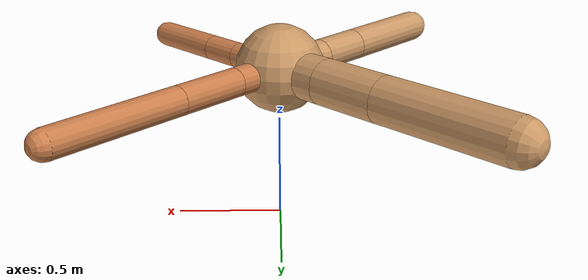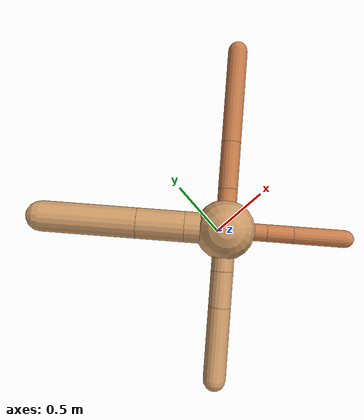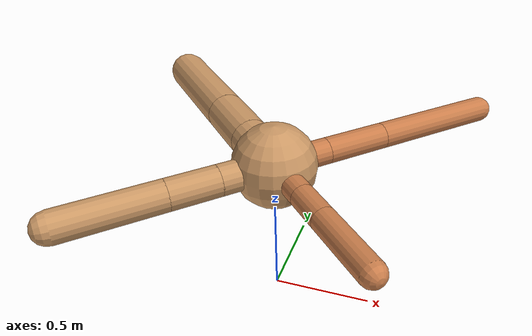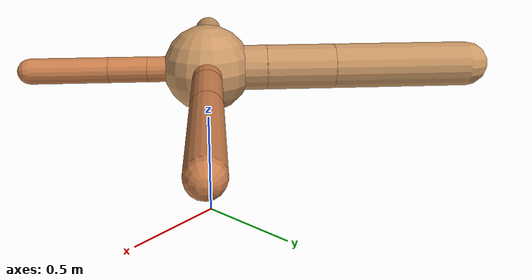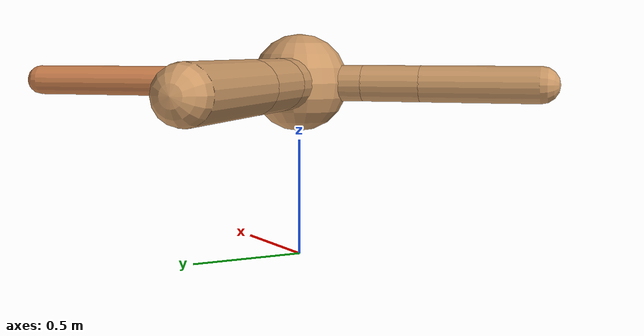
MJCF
<?xml version="1.0" ?>
<mujoco model="ant">

	<compiler angle="degree" coordinate="local" inertiafromgeom="true"/>

	<option integrator="RK4" timestep="0.01"/>

	<custom>

		<numeric data="0.0 0.0 0.55 1.0 0.0 0.0 0.0 0.0 1.0 0.0 -1.0 0.0 -1.0 0.0 1.0" name="init_qpos"/>

	</custom>

	<default>

		<joint armature="1" damping="1" limited="true"/>

		<geom conaffinity="0" condim="3" density="5.0" friction="1.5 0.1 0.1" margin="0.01" rgba="0.8 0.6 0.4 1"/>

	</default>

	<worldbody>

		<body name="torso" pos="0 0 0.75">

			<geom name="torso_geom" pos="0 0 0" size="0.20863157604978666" type="sphere"/>

			<!--joint armature="0" damping="0" limited="false" margin="0.01" name="root" pos="0 0 0" type="free"/-->

			<body name="front_left_leg" pos="0 0 0">

				<geom fromto="0 0 0 0.2 0.2 0" name="aux_1_geom" size="0.06725090635865547" type="capsule" rgba=".8 .5 .3 1"/>

				<body name="aux_1" pos="0.2 0.2 0">

					<joint axis="0 0 1" name="hip_1" pos="0.0 0.0 0.0" range="-40 40" type="hinge"/>

					<geom fromto="0 0 0 0.23102489934163303 0.23102489934163303 0" name="left_leg_geom" size="0.06725090635865547" type="capsule" rgba=".8 .5 .3 1"/>

					<body pos="0.23102489934163303 0.23102489934163303 0" name="front_left_foot">

						<joint axis="-1 1 0" name="ankle_1" pos="0.0 0.0 0.0" range="30 100" type="hinge"/>

						<geom fromto="0 0 0 0.46204979868326607 0.46204979868326607 0" name="left_ankle_geom" size="0.06725090635865547" type="capsule" rgba=".8 .5 .3 1"/>

					</body>

				</body>

			</body>

			<body name="front_right_leg" pos="0 0 0">

				<geom fromto="0 0 0 -0.2 0.2 0" name="aux_2_geom" size="0.10789682866470654" type="capsule"/>

				<body name="aux_2" pos="-0.2 0.2 0">

					<joint axis="0 0 1" name="hip_2" pos="0.0 0.0 0.0" range="-40 40" type="hinge"/>

					<geom fromto="0 0 0 -0.23207259663853952 0.23207259663853952 0" name="right_leg_geom" size="0.10789682866470654" type="capsule"/>

					<body pos="-0.23207259663853952 0.23207259663853952 0" name="front_right_foot">

						<joint axis="1 1 0" name="ankle_2" pos="0.0 0.0 0.0" range="-100 -30" type="hinge"/>

						<geom fromto="0 0 0 -0.46414519327707904 0.46414519327707904 0" name="right_ankle_geom" size="0.10789682866470654" type="capsule"/>

					</body>

				</body>

			</body>

			<body name="left_back_leg" pos="0 0 0">

				<geom fromto="0 0 0 -0.2 -0.2 0" name="aux_3_geom" size="0.07689932617266197" type="capsule"/>

				<body name="aux_3" pos="-0.2 -0.2 0">

					<joint axis="0 0 1" name="hip_3" pos="0.0 0.0 0.0" range="-40 40" type="hinge"/>

					<geom fromto="0 0 0 -0.1724916565402555 -0.1724916565402555 0" name="back_leg_geom" size="0.07689932617266197" type="capsule"/>

					<body pos="-0.1724916565402555 -0.1724916565402555 0" name="left_back_foot">

						<joint axis="-1 1 0" name="ankle_3" pos="0.0 0.0 0.0" range="-100 -30" type="hinge"/>

						<geom fromto="0 0 0 -0.344983313080511 -0.344983313080511 0" name="third_ankle_geom" size="0.07689932617266197" type="capsule"/>

					</body>

				</body>

			</body>

			<body name="right_back_leg" pos="0 0 0">

				<geom fromto="0 0 0 0.2 -0.2 0" name="aux_4_geom" size="0.06082954342720998" type="capsule" rgba=".8 .5 .3 1"/>

				<body name="aux_4" pos="0.2 -0.2 0">

					<joint axis="0 0 1" name="hip_4" pos="0.0 0.0 0.0" range="-40 40" type="hinge"/>

					<geom fromto="0 0 0 0.1280357512635217 -0.1280357512635217 0" name="rightback_leg_geom" size="0.06082954342720998" type="capsule" rgba=".8 .5 .3 1"/>

					<body pos="0.1280357512635217 -0.1280357512635217 0" name="right_back_foot">

						<joint axis="1 1 0" name="ankle_4" pos="0.0 0.0 0.0" range="30 100" type="hinge"/>

						<geom fromto="0 0 0 0.2560715025270434 -0.2560715025270434 0" name="fourth_ankle_geom" size="0.06082954342720998" type="capsule" rgba=".8 .5 .3 1"/>

					</body>

				</body>

			</body>

		</body>

	</worldbody>

	<actuator>

		<motor ctrllimited="true" ctrlrange="-1.0 1.0" joint="hip_4" gear="150"/>

		<motor ctrllimited="true" ctrlrange="-1.0 1.0" joint="ankle_4" gear="150"/>

		<motor ctrllimited="true" ctrlrange="-1.0 1.0" joint="hip_1" gear="150"/>

		<motor ctrllimited="true" ctrlrange="-1.0 1.0" joint="ankle_1" gear="150"/>

		<motor ctrllimited="true" ctrlrange="-1.0 1.0" joint="hip_2" gear="150"/>

		<motor ctrllimited="true" ctrlrange="-1.0 1.0" joint="ankle_2" gear="150"/>

		<motor ctrllimited="true" ctrlrange="-1.0 1.0" joint="hip_3" gear="150"/>

		<motor ctrllimited="true" ctrlrange="-1.0 1.0" joint="ankle_3" gear="150"/>

	</actuator>

</mujoco>
